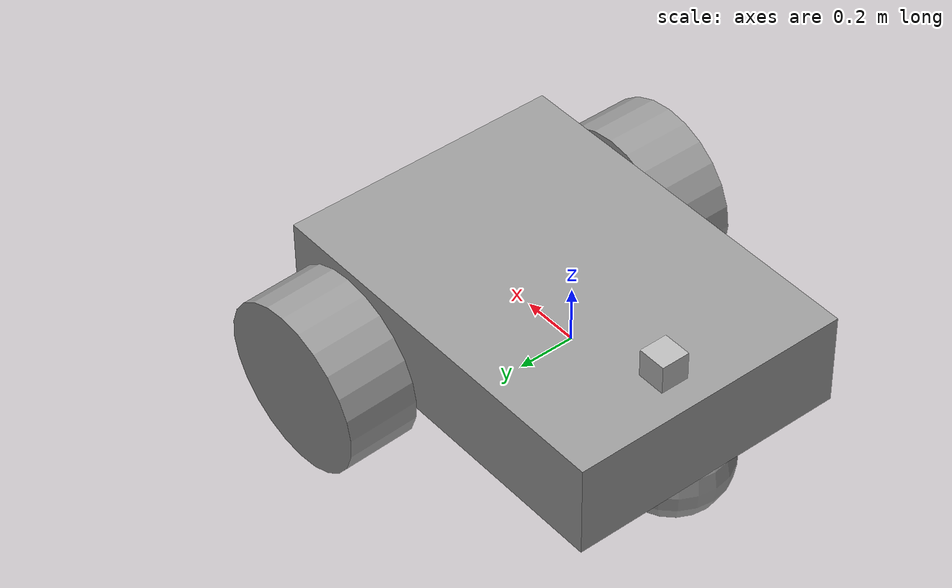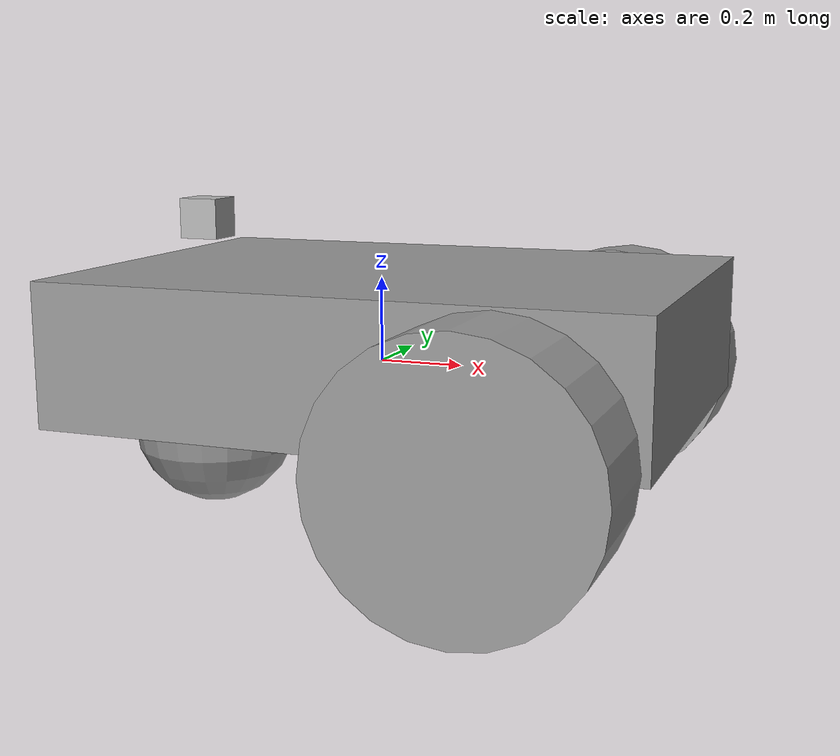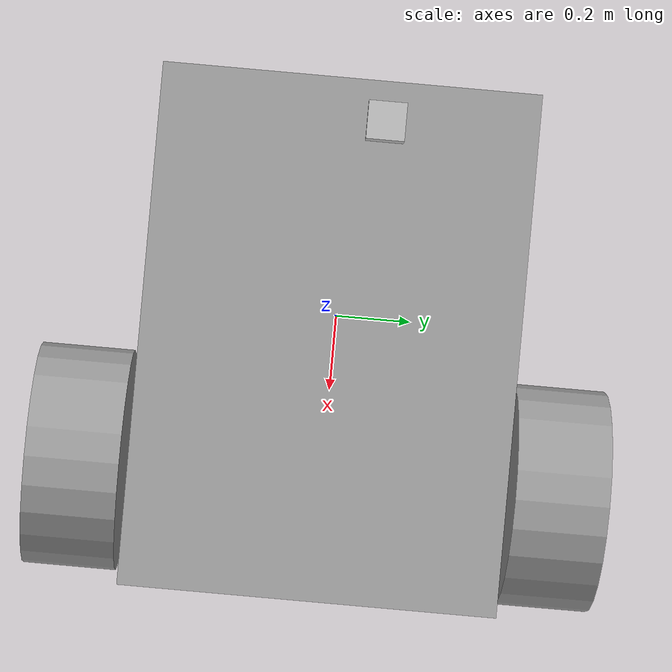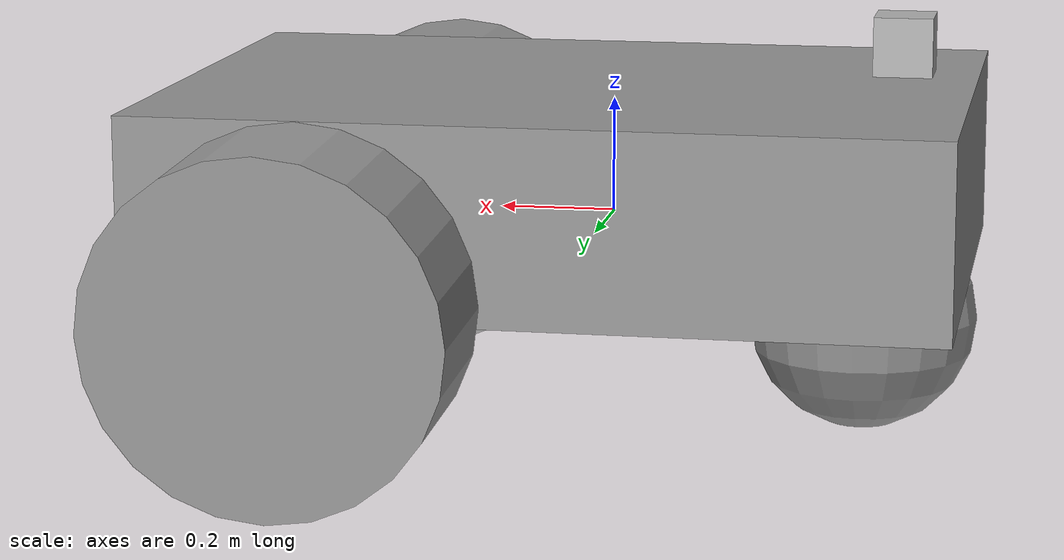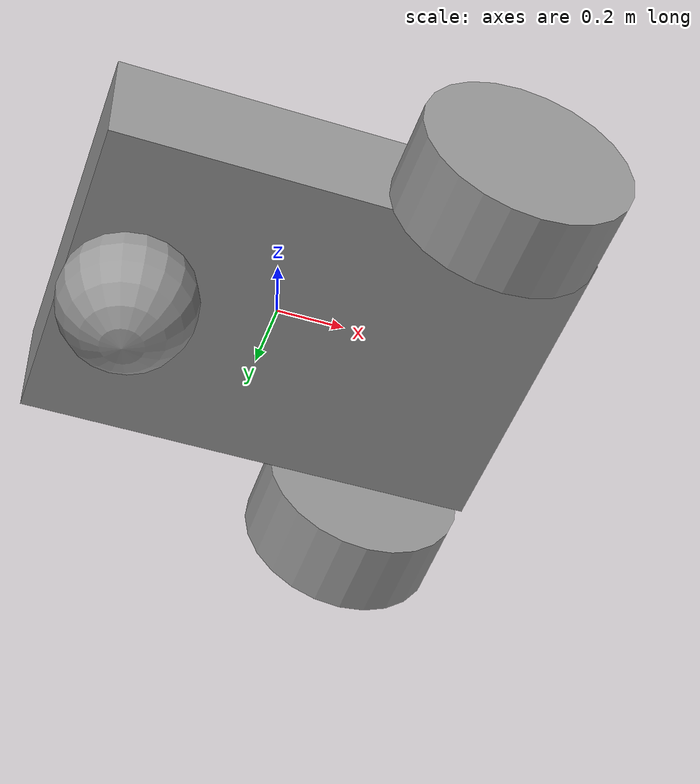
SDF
<?xml version='1.0'?>
<sdf version='1.6'>
  <model name='Robot1'>
    <link name='link_3'>
      <pose frame=''>0.065945 -0.011815 0.059326 0 -0 0</pose>
      <inertial>
        <mass>0.460011</mass>
        <inertia>
          <ixx>0.042605</ixx>
          <ixy>0</ixy>
          <ixz>0</ixz>
          <iyy>0.0770829</iyy>
          <iyz>0</iyz>
          <izz>0.111146</izz>
        </inertia>
        <pose frame=''>0 0 0 0 -0 0</pose>
      </inertial>
      <gravity>1</gravity>
      <self_collide>0</self_collide>
      <kinematic>0</kinematic>
      <visual name='visual'>
        <pose frame=''>0 0 0 0 -0 0</pose>
        <geometry>
          <box>
            <size>1.37819 1 0.333777</size>
          </box>
        </geometry>
        <material>
          <lighting>1</lighting>
          <script>
            <uri>file://media/materials/scripts/gazebo.material</uri>
            <name>Gazebo/Grey</name>
          </script>
          <shader type='pixel'>
            <normal_map>__default__</normal_map>
          </shader>
          <ambient>0.3 0.3 0.3 1</ambient>
          <diffuse>0.7 0.7 0.7 1</diffuse>
          <specular>0.01 0.01 0.01 1</specular>
          <emissive>0 0 0 1</emissive>
        </material>
        <transparency>0</transparency>
        <cast_shadows>1</cast_shadows>
      </visual>
      <collision name='collision'>
        <laser_retro>0</laser_retro>
        <max_contacts>10</max_contacts>
        <pose frame=''>0 0 0 0 -0 0</pose>
        <geometry>
          <box>
            <size>1.37819 1 0.333777</size>
          </box>
        </geometry>
        <surface>
          <friction>
            <ode>
              <mu>1</mu>
              <mu2>1</mu2>
              <fdir1>0 0 0</fdir1>
              <slip1>0</slip1>
              <slip2>0</slip2>
            </ode>
            <torsional>
              <coefficient>1</coefficient>
              <patch_radius>0</patch_radius>
              <surface_radius>0</surface_radius>
              <use_patch_radius>1</use_patch_radius>
              <ode>
                <slip>0</slip>
              </ode>
            </torsional>
          </friction>
          <bounce>
            <restitution_coefficient>0</restitution_coefficient>
            <threshold>1e+06</threshold>
          </bounce>
          <contact>
            <collide_without_contact>0</collide_without_contact>
            <collide_without_contact_bitmask>1</collide_without_contact_bitmask>
            <collide_bitmask>1</collide_bitmask>
            <ode>
              <soft_cfm>0</soft_cfm>
              <soft_erp>0.2</soft_erp>
              <kp>1e+13</kp>
              <kd>1</kd>
              <max_vel>0.01</max_vel>
              <min_depth>0</min_depth>
            </ode>
            <bullet>
              <split_impulse>1</split_impulse>
              <split_impulse_penetration_threshold>-0.01</split_impulse_penetration_threshold>
              <soft_cfm>0</soft_cfm>
              <soft_erp>0.2</soft_erp>
              <kp>1e+13</kp>
              <kd>1</kd>
            </bullet>
          </contact>
        </surface>
      </collision>
    </link>
    <link name='link_4'>
      <pose frame=''>0.440699 0.620755 -0.076403 1.5207 -0 0</pose>
      <inertial>
        <mass>1</mass>
        <inertia>
          <ixx>0.145833</ixx>
          <ixy>0</ixy>
          <ixz>0</ixz>
          <iyy>0.145833</iyy>
          <iyz>0</iyz>
          <izz>0.125</izz>
        </inertia>
        <pose frame=''>0 0 0 0 -0 0</pose>
      </inertial>
      <gravity>1</gravity>
      <self_collide>0</self_collide>
      <kinematic>0</kinematic>
      <visual name='visual'>
        <pose frame=''>0 0 0 0 -0 0</pose>
        <geometry>
          <cylinder>
            <radius>0.3</radius>
            <length>0.25</length>
          </cylinder>
        </geometry>
        <material>
          <lighting>1</lighting>
          <script>
            <uri>file://media/materials/scripts/gazebo.material</uri>
            <name>Gazebo/Grey</name>
          </script>
          <shader type='pixel'>
            <normal_map>__default__</normal_map>
          </shader>
          <ambient>0.3 0.3 0.3 1</ambient>
          <diffuse>0.7 0.7 0.7 1</diffuse>
          <specular>0.01 0.01 0.01 1</specular>
          <emissive>0 0 0 1</emissive>
        </material>
        <transparency>0</transparency>
        <cast_shadows>1</cast_shadows>
      </visual>
      <collision name='collision'>
        <laser_retro>0</laser_retro>
        <max_contacts>10</max_contacts>
        <pose frame=''>0 0 0 0 -0 0</pose>
        <geometry>
          <cylinder>
            <radius>0.3</radius>
            <length>0.25</length>
          </cylinder>
        </geometry>
        <surface>
          <friction>
            <ode>
              <mu>1</mu>
              <mu2>1</mu2>
              <fdir1>0 0 0</fdir1>
              <slip1>0</slip1>
              <slip2>0</slip2>
            </ode>
            <torsional>
              <coefficient>1</coefficient>
              <patch_radius>0</patch_radius>
              <surface_radius>0</surface_radius>
              <use_patch_radius>1</use_patch_radius>
              <ode>
                <slip>0</slip>
              </ode>
            </torsional>
          </friction>
          <bounce>
            <restitution_coefficient>0</restitution_coefficient>
            <threshold>1e+06</threshold>
          </bounce>
          <contact>
            <collide_without_contact>0</collide_without_contact>
            <collide_without_contact_bitmask>1</collide_without_contact_bitmask>
            <collide_bitmask>1</collide_bitmask>
            <ode>
              <soft_cfm>0</soft_cfm>
              <soft_erp>0.2</soft_erp>
              <kp>1e+13</kp>
              <kd>1</kd>
              <max_vel>0.01</max_vel>
              <min_depth>0</min_depth>
            </ode>
            <bullet>
              <split_impulse>1</split_impulse>
              <split_impulse_penetration_threshold>-0.01</split_impulse_penetration_threshold>
              <soft_cfm>0</soft_cfm>
              <soft_erp>0.2</soft_erp>
              <kp>1e+13</kp>
              <kd>1</kd>
            </bullet>
          </contact>
        </surface>
      </collision>
    </link>
    <link name='link_4_clone'>
      <pose frame=''>0.440699 -0.659124 -0.076403 1.5707 -0 0</pose>
      <inertial>
        <mass>1</mass>
        <inertia>
          <ixx>0.145833</ixx>
          <ixy>0</ixy>
          <ixz>0</ixz>
          <iyy>0.145833</iyy>
          <iyz>0</iyz>
          <izz>0.125</izz>
        </inertia>
        <pose frame=''>0 0 0 0 -0 0</pose>
      </inertial>
      <self_collide>0</self_collide>
      <kinematic>0</kinematic>
      <gravity>1</gravity>
      <visual name='visual'>
        <pose frame=''>0 0 0 0 -0 0</pose>
        <geometry>
          <cylinder>
            <radius>0.3</radius>
            <length>0.25</length>
          </cylinder>
        </geometry>
        <material>
          <lighting>1</lighting>
          <script>
            <uri>file://media/materials/scripts/gazebo.material</uri>
            <name>Gazebo/Grey</name>
          </script>
          <shader type='pixel'>
            <normal_map>__default__</normal_map>
          </shader>
          <ambient>0.3 0.3 0.3 1</ambient>
          <diffuse>0.7 0.7 0.7 1</diffuse>
          <specular>0.01 0.01 0.01 1</specular>
          <emissive>0 0 0 1</emissive>
        </material>
        <transparency>0</transparency>
        <cast_shadows>1</cast_shadows>
      </visual>
      <collision name='collision'>
        <laser_retro>0</laser_retro>
        <max_contacts>10</max_contacts>
        <pose frame=''>0 0 0 0 -0 0</pose>
        <geometry>
          <cylinder>
            <radius>0.3</radius>
            <length>0.25</length>
          </cylinder>
        </geometry>
        <surface>
          <friction>
            <ode>
              <mu>1</mu>
              <mu2>1</mu2>
              <fdir1>0 0 0</fdir1>
              <slip1>0</slip1>
              <slip2>0</slip2>
            </ode>
            <torsional>
              <coefficient>1</coefficient>
              <patch_radius>0</patch_radius>
              <surface_radius>0</surface_radius>
              <use_patch_radius>1</use_patch_radius>
              <ode>
                <slip>0</slip>
              </ode>
            </torsional>
          </friction>
          <bounce>
            <restitution_coefficient>0</restitution_coefficient>
            <threshold>1e+06</threshold>
          </bounce>
          <contact>
            <collide_without_contact>0</collide_without_contact>
            <collide_without_contact_bitmask>1</collide_without_contact_bitmask>
            <collide_bitmask>1</collide_bitmask>
            <ode>
              <soft_cfm>0</soft_cfm>
              <soft_erp>0.2</soft_erp>
              <kp>1e+13</kp>
              <kd>1</kd>
              <max_vel>0.01</max_vel>
              <min_depth>0</min_depth>
            </ode>
            <bullet>
              <split_impulse>1</split_impulse>
              <split_impulse_penetration_threshold>-0.01</split_impulse_penetration_threshold>
              <soft_cfm>0</soft_cfm>
              <soft_erp>0.2</soft_erp>
              <kp>1e+13</kp>
              <kd>1</kd>
            </bullet>
          </contact>
        </surface>
      </collision>
    </link>
    <link name='link_5'>
      <pose frame=''>-0.43749 -0.034095 -0.176403 0 -0 0</pose>
      <inertial>
        <mass>1</mass>
        <inertia>
          <ixx>0.1</ixx>
          <ixy>0</ixy>
          <ixz>0</ixz>
          <iyy>0.1</iyy>
          <iyz>0</iyz>
          <izz>0.1</izz>
        </inertia>
        <pose frame=''>0 0 0 0 -0 0</pose>
      </inertial>
      <gravity>1</gravity>
      <self_collide>0</self_collide>
      <kinematic>0</kinematic>
      <visual name='visual'>
        <pose frame=''>0 0 0 0 -0 0</pose>
        <geometry>
          <sphere>
            <radius>0.2</radius>
          </sphere>
        </geometry>
        <material>
          <lighting>1</lighting>
          <script>
            <uri>file://media/materials/scripts/gazebo.material</uri>
            <name>Gazebo/Grey</name>
          </script>
          <shader type='pixel'>
            <normal_map>__default__</normal_map>
          </shader>
          <ambient>0.3 0.3 0.3 1</ambient>
          <diffuse>0.7 0.7 0.7 1</diffuse>
          <specular>0.01 0.01 0.01 1</specular>
          <emissive>0 0 0 1</emissive>
        </material>
        <transparency>0</transparency>
        <cast_shadows>1</cast_shadows>
      </visual>
      <collision name='collision'>
        <laser_retro>0</laser_retro>
        <max_contacts>10</max_contacts>
        <pose frame=''>0 0 0 0 -0 0</pose>
        <geometry>
          <sphere>
            <radius>0.2</radius>
          </sphere>
        </geometry>
        <surface>
          <friction>
            <ode>
              <mu>1</mu>
              <mu2>1</mu2>
              <fdir1>0 0 0</fdir1>
              <slip1>0</slip1>
              <slip2>0</slip2>
            </ode>
            <torsional>
              <coefficient>1</coefficient>
              <patch_radius>0</patch_radius>
              <surface_radius>0</surface_radius>
              <use_patch_radius>1</use_patch_radius>
              <ode>
                <slip>0</slip>
              </ode>
            </torsional>
          </friction>
          <bounce>
            <restitution_coefficient>0</restitution_coefficient>
            <threshold>1e+06</threshold>
          </bounce>
          <contact>
            <collide_without_contact>0</collide_without_contact>
            <collide_without_contact_bitmask>1</collide_without_contact_bitmask>
            <collide_bitmask>1</collide_bitmask>
            <ode>
              <soft_cfm>0</soft_cfm>
              <soft_erp>0.2</soft_erp>
              <kp>1e+13</kp>
              <kd>1</kd>
              <max_vel>0.01</max_vel>
              <min_depth>0</min_depth>
            </ode>
            <bullet>
              <split_impulse>1</split_impulse>
              <split_impulse_penetration_threshold>-0.01</split_impulse_penetration_threshold>
              <soft_cfm>0</soft_cfm>
              <soft_erp>0.2</soft_erp>
              <kp>1e+13</kp>
              <kd>1</kd>
            </bullet>
          </contact>
        </surface>
      </collision>
    </link>
    <model name='depth_camera'>
      <link name='link'>
        <pose frame=''>0 0 0.05 0 -0 0</pose>
        <inertial>
          <mass>0.1</mass>
          <inertia>
            <ixx>0.000166667</ixx>
            <iyy>0.000166667</iyy>
            <izz>0.000166667</izz>
            <ixy>0</ixy>
            <ixz>0</ixz>
            <iyz>0</iyz>
          </inertia>
        </inertial>
        <collision name='collision'>
          <geometry>
            <box>
              <size>0.1 0.1 0.1</size>
            </box>
          </geometry>
        </collision>
        <visual name='visual'>
          <geometry>
            <box>
              <size>0.1 0.1 0.1</size>
            </box>
          </geometry>
        </visual>
        <sensor name='camera' type='depth'>
          <camera name='__default__'>
            <horizontal_fov>1.047</horizontal_fov>
            <image>
              <width>320</width>
              <height>240</height>
            </image>
            <clip>
              <near>0.1</near>
              <far>100</far>
            </clip>
          </camera>
          <always_on>1</always_on>
          <update_rate>30</update_rate>
          <visualize>1</visualize>
        </sensor>
      </link>
      <pose frame=''>-0.509853 0.084278 0.269884 0 -0 0</pose>
    </model>
    <joint name='link_3_JOINT_5' type='revolute'>
      <parent>link_3</parent>
      <child>link_4</child>
      <pose frame=''>0 0 0 0 -0 0</pose>
      <axis>
        <xyz>0 0 1</xyz>
        <use_parent_model_frame>0</use_parent_model_frame>
        <limit>
          <lower>-1.79769e+308</lower>
          <upper>1.79769e+308</upper>
          <effort>-1</effort>
          <velocity>-1</velocity>
        </limit>
        <dynamics>
          <spring_reference>0</spring_reference>
          <spring_stiffness>0</spring_stiffness>
          <damping>0</damping>
        </dynamics>
      </axis>
      <physics>
        <ode>
          <limit>
            <cfm>0</cfm>
            <erp>0.2</erp>
          </limit>
          <suspension>
            <cfm>0</cfm>
            <erp>0.2</erp>
          </suspension>
        </ode>
      </physics>
    </joint>
    <joint name='link_3_JOINT_6' type='revolute'>
      <parent>link_3</parent>
      <child>link_4_clone</child>
      <pose frame=''>0 0 0 0 -0 0</pose>
      <axis>
        <xyz>0 0 1</xyz>
        <use_parent_model_frame>0</use_parent_model_frame>
        <limit>
          <lower>-1.79769e+308</lower>
          <upper>1.79769e+308</upper>
          <effort>-1</effort>
          <velocity>-1</velocity>
        </limit>
        <dynamics>
          <spring_reference>0</spring_reference>
          <spring_stiffness>0</spring_stiffness>
          <damping>0</damping>
        </dynamics>
      </axis>
      <physics>
        <ode>
          <limit>
            <cfm>0</cfm>
            <erp>0.2</erp>
          </limit>
          <suspension>
            <cfm>0</cfm>
            <erp>0.2</erp>
          </suspension>
        </ode>
      </physics>
    </joint>
    <joint name='link_3_JOINT_7' type='ball'>
      <parent>link_3</parent>
      <child>link_5</child>
      <pose frame=''>0 0 0 0 -0 0</pose>
      <physics>
        <ode>
          <limit>
            <cfm>0</cfm>
            <erp>0.2</erp>
          </limit>
          <suspension>
            <cfm>0</cfm>
            <erp>0.2</erp>
          </suspension>
        </ode>
      </physics>
    </joint>
    <joint name='link_3_JOINT_8' type='revolute'>
      <parent>link_3</parent>
      <child>depth_camera::link</child>
      <pose frame=''>0 0 0 0 -0 0</pose>
      <axis>
        <xyz>1 0 0</xyz>
        <use_parent_model_frame>0</use_parent_model_frame>
        <limit>
          <lower>-1.79769e+308</lower>
          <upper>1.79769e+308</upper>
          <effort>-1</effort>
          <velocity>-1</velocity>
        </limit>
        <dynamics>
          <spring_reference>0</spring_reference>
          <spring_stiffness>0</spring_stiffness>
          <damping>0</damping>
        </dynamics>
      </axis>
      <physics>
        <ode>
          <limit>
            <cfm>0</cfm>
            <erp>0.2</erp>
          </limit>
          <suspension>
            <cfm>0</cfm>
            <erp>0.2</erp>
          </suspension>
        </ode>
      </physics>
    </joint>
    <static>0</static>
    <allow_auto_disable>1</allow_auto_disable>
  </model>
</sdf>
